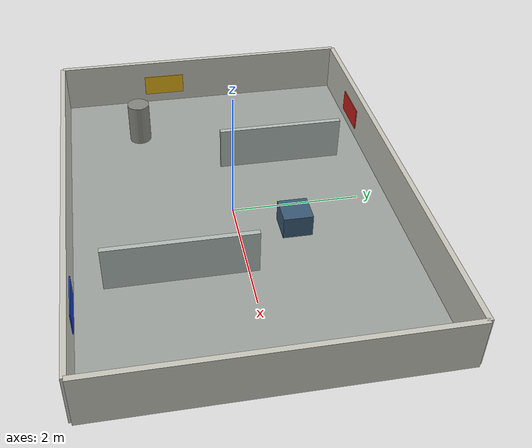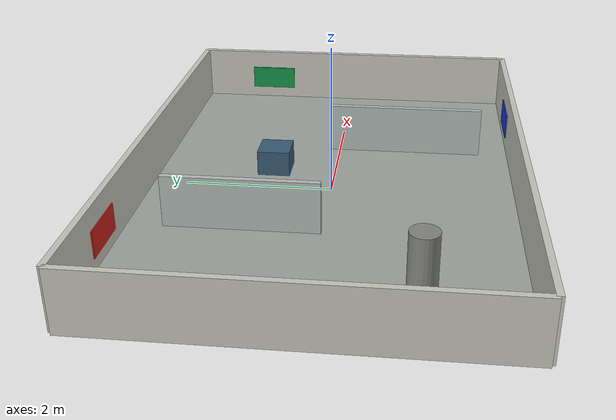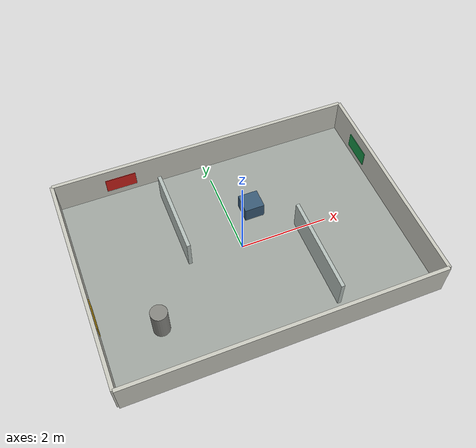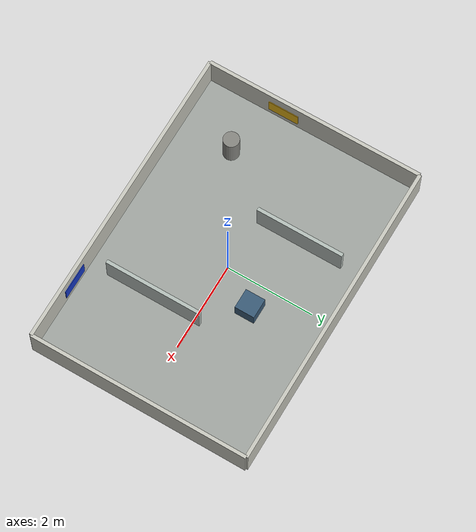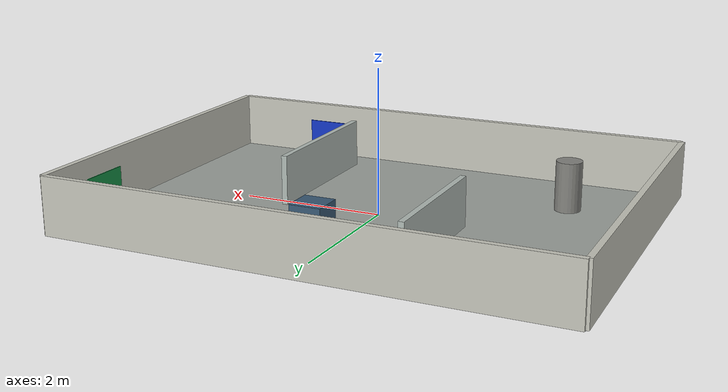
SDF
<?xml version="1.0" ?>
<sdf version="1.9">
  <world name="indoor_scan_test">
    <gravity>0 0 -9.8</gravity>
    <magnetic_field>6e-06 2.3e-05 -4.2e-05</magnetic_field>
    <atmosphere type="adiabatic"/>

    <plugin
      filename="gz-sim-physics-system"
      name="gz::sim::systems::Physics">
    </plugin>
    <plugin
      filename="gz-sim-user-commands-system"
      name="gz::sim::systems::UserCommands">
    </plugin>
    <plugin
      filename="gz-sim-scene-broadcaster-system"
      name="gz::sim::systems::SceneBroadcaster">
    </plugin>
    <plugin
      filename="gz-sim-sensors-system"
      name="gz::sim::systems::Sensors">
      <render_engine>ogre2</render_engine>
    </plugin>
    <plugin
      filename="gz-sim-imu-system"
      name="gz::sim::systems::Imu">
    </plugin>

    <light name="sun" type="directional">
      <cast_shadows>true</cast_shadows>
      <pose>0 0 10 0 0 0</pose>
      <diffuse>0.8 0.8 0.8 1</diffuse>
      <specular>0.2 0.2 0.2 1</specular>
      <attenuation>
        <range>1000</range>
        <constant>0.9</constant>
        <linear>0.01</linear>
        <quadratic>0.001</quadratic>
      </attenuation>
      <direction>-0.5 0.1 -0.9</direction>
    </light>

    <model name="floor">
      <static>true</static>
      <link name="link">
        <collision name="collision">
          <geometry>
            <box>
              <size>7.0 5.0 0.02</size>
            </box>
          </geometry>
        </collision>
        <visual name="visual">
          <geometry>
            <box>
              <size>7.0 5.0 0.02</size>
            </box>
          </geometry>
          <material>
            <ambient>0.62 0.64 0.62 1</ambient>
            <diffuse>0.62 0.64 0.62 1</diffuse>
          </material>
        </visual>
      </link>
    </model>

    <model name="north_wall">
      <static>true</static>
      <pose>0 2.5 0.4 0 0 0</pose>
      <link name="link">
        <collision name="collision">
          <geometry><box><size>7.0 0.08 0.8</size></box></geometry>
        </collision>
        <visual name="visual">
          <geometry><box><size>7.0 0.08 0.8</size></box></geometry>
          <material>
            <ambient>0.78 0.78 0.74 1</ambient>
            <diffuse>0.78 0.78 0.74 1</diffuse>
          </material>
        </visual>
      </link>
    </model>

    <model name="south_wall">
      <static>true</static>
      <pose>0 -2.5 0.4 0 0 0</pose>
      <link name="link">
        <collision name="collision">
          <geometry><box><size>7.0 0.08 0.8</size></box></geometry>
        </collision>
        <visual name="visual">
          <geometry><box><size>7.0 0.08 0.8</size></box></geometry>
          <material>
            <ambient>0.78 0.78 0.74 1</ambient>
            <diffuse>0.78 0.78 0.74 1</diffuse>
          </material>
        </visual>
      </link>
    </model>

    <model name="east_wall">
      <static>true</static>
      <pose>3.5 0 0.4 0 0 0</pose>
      <link name="link">
        <collision name="collision">
          <geometry><box><size>0.08 5.0 0.8</size></box></geometry>
        </collision>
        <visual name="visual">
          <geometry><box><size>0.08 5.0 0.8</size></box></geometry>
          <material>
            <ambient>0.78 0.78 0.74 1</ambient>
            <diffuse>0.78 0.78 0.74 1</diffuse>
          </material>
        </visual>
      </link>
    </model>

    <model name="west_wall">
      <static>true</static>
      <pose>-3.5 0 0.4 0 0 0</pose>
      <link name="link">
        <collision name="collision">
          <geometry><box><size>0.08 5.0 0.8</size></box></geometry>
        </collision>
        <visual name="visual">
          <geometry><box><size>0.08 5.0 0.8</size></box></geometry>
          <material>
            <ambient>0.78 0.78 0.74 1</ambient>
            <diffuse>0.78 0.78 0.74 1</diffuse>
          </material>
        </visual>
      </link>
    </model>

    <model name="left_room_divider">
      <static>true</static>
      <pose>-1.2 1.0 0.35 0 0 0</pose>
      <link name="link">
        <collision name="collision">
          <geometry><box><size>0.08 2.0 0.7</size></box></geometry>
        </collision>
        <visual name="visual">
          <geometry><box><size>0.08 2.0 0.7</size></box></geometry>
          <material>
            <ambient>0.7 0.74 0.72 1</ambient>
            <diffuse>0.7 0.74 0.72 1</diffuse>
          </material>
        </visual>
      </link>
    </model>

    <model name="right_room_divider">
      <static>true</static>
      <pose>1.35 -0.95 0.35 0 0 0</pose>
      <link name="link">
        <collision name="collision">
          <geometry><box><size>0.08 2.2 0.7</size></box></geometry>
        </collision>
        <visual name="visual">
          <geometry><box><size>0.08 2.2 0.7</size></box></geometry>
          <material>
            <ambient>0.7 0.74 0.72 1</ambient>
            <diffuse>0.7 0.74 0.72 1</diffuse>
          </material>
        </visual>
      </link>
    </model>

    <model name="center_low_obstacle">
      <static>true</static>
      <pose>0.55 0.85 0.18 0 0 0</pose>
      <link name="link">
        <collision name="collision">
          <geometry><box><size>0.45 0.45 0.36</size></box></geometry>
        </collision>
        <visual name="visual">
          <geometry><box><size>0.45 0.45 0.36</size></box></geometry>
          <material>
            <ambient>0.22 0.35 0.46 1</ambient>
            <diffuse>0.22 0.35 0.46 1</diffuse>
          </material>
        </visual>
      </link>
    </model>

    <model name="round_column">
      <static>true</static>
      <pose>-2.25 -1.25 0.35 0 0 0</pose>
      <link name="link">
        <collision name="collision">
          <geometry><cylinder><radius>0.18</radius><length>0.7</length></cylinder></geometry>
        </collision>
        <visual name="visual">
          <geometry><cylinder><radius>0.18</radius><length>0.7</length></cylinder></geometry>
          <material>
            <ambient>0.52 0.52 0.5 1</ambient>
            <diffuse>0.52 0.52 0.5 1</diffuse>
          </material>
        </visual>
      </link>
    </model>

    <model name="camera_panel_red">
      <static>true</static>
      <pose>-2.0 2.455 0.35 0 0 0</pose>
      <link name="link">
        <visual name="visual">
          <geometry><box><size>0.7 0.02 0.35</size></box></geometry>
          <material>
            <ambient>0.8 0.12 0.1 1</ambient>
            <diffuse>0.8 0.12 0.1 1</diffuse>
          </material>
        </visual>
      </link>
    </model>

    <model name="camera_panel_green">
      <static>true</static>
      <pose>3.455 1.35 0.35 0 0 0</pose>
      <link name="link">
        <visual name="visual">
          <geometry><box><size>0.02 0.7 0.35</size></box></geometry>
          <material>
            <ambient>0.08 0.58 0.28 1</ambient>
            <diffuse>0.08 0.58 0.28 1</diffuse>
          </material>
        </visual>
      </link>
    </model>

    <model name="camera_panel_blue">
      <static>true</static>
      <pose>1.95 -2.455 0.35 0 0 0</pose>
      <link name="link">
        <visual name="visual">
          <geometry><box><size>0.7 0.02 0.35</size></box></geometry>
          <material>
            <ambient>0.08 0.22 0.78 1</ambient>
            <diffuse>0.08 0.22 0.78 1</diffuse>
          </material>
        </visual>
      </link>
    </model>

    <model name="camera_panel_yellow">
      <static>true</static>
      <pose>-3.455 -0.7 0.35 0 0 0</pose>
      <link name="link">
        <visual name="visual">
          <geometry><box><size>0.02 0.7 0.35</size></box></geometry>
          <material>
            <ambient>0.9 0.7 0.08 1</ambient>
            <diffuse>0.9 0.7 0.08 1</diffuse>
          </material>
        </visual>
      </link>
    </model>
  </world>
</sdf>
